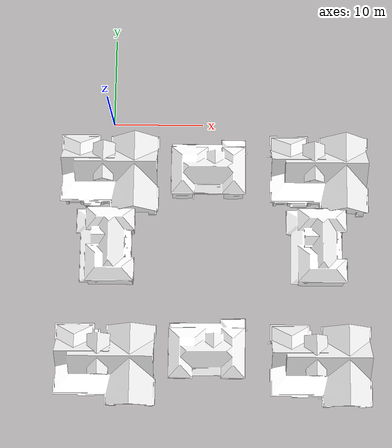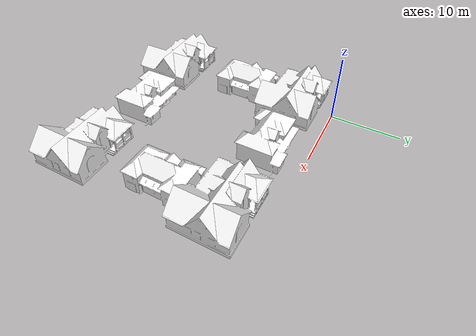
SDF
<sdf version='1.4'>
  <world name='default'>
    <plugin name="gazebo_octomap" filename="librotors_gazebo_octomap_plugin.so"/>
    <light name='sun' type='directional'>
      <cast_shadows>1</cast_shadows>
      <pose>0 0 10 0 0 0</pose>
      <diffuse>0.8 0.8 0.8 1</diffuse>
      <specular>0.2 0.2 0.2 1</specular>
      <attenuation>
        <range>1000</range>
        <constant>0.9</constant>
        <linear>0.01</linear>
        <quadratic>0.001</quadratic>
      </attenuation>
      <direction>-0.5 0.1 -0.9</direction>
    </light>
    <physics type='ode'>
      <ode>
        <solver>
          <type>quick</type>
          <iters>1000</iters>
          <sor>1.3</sor>
        </solver>
        <constraints>
          <cfm>0</cfm>
          <erp>0.2</erp>
          <contact_max_correcting_vel>100</contact_max_correcting_vel>
          <contact_surface_layer>0.001</contact_surface_layer>
        </constraints>
      </ode>
      <max_step_size>0.005</max_step_size>
      <real_time_factor>1</real_time_factor>
      <real_time_update_rate>200</real_time_update_rate>
      <gravity>0 0 -9.8</gravity>
    </physics>
    <scene>
      <ambient>0.4 0.4 0.4 1</ambient>
      <background>0.7 0.7 0.7 1</background>
      <shadows>1</shadows>
    </scene>
    <spherical_coordinates>
      <surface_model>EARTH_WGS84</surface_model>
      <latitude_deg>0</latitude_deg>
      <longitude_deg>0</longitude_deg>
      <elevation>0</elevation>
      <heading_deg>0</heading_deg>
    </spherical_coordinates>

    <model name='House 1'>
      <static>1</static>
      <link name='link'>
        <collision name='collision'>
          <geometry>
            <mesh>
              <uri>model://house_1/meshes/house_1.dae</uri>
            </mesh>
          </geometry>
          <max_contacts>10</max_contacts>
          <surface>
            <bounce/>
            <friction>
              <ode/>
            </friction>
            <contact>
              <ode/>
            </contact>
          </surface>
        </collision>
        <visual name='visual'>
          <geometry>
            <mesh>
              <uri>model://house_1/meshes/house_1.dae</uri>
            </mesh>
          </geometry>
          <material>
            <script>
              <uri>model://house_1/materials/scripts</uri>
              <uri>model://house_1/materials/textures</uri>
              <name>House_1/Diffuse</name>
            </script>
            <shader type='normal_map_object_space'>
              <normal_map>House_1_Normal.png</normal_map>
            </shader>
          </material>
        </visual>
        <velocity_decay>
          <linear>0</linear>
          <angular>0</angular>
        </velocity_decay>
        <self_collide>0</self_collide>
        <kinematic>0</kinematic>
        <gravity>1</gravity>
      </link>
      <pose>23 -6 0 0 0 0</pose>
    </model>

    <model name='House 2'>
      <static>1</static>
      <link name='link'>
        <collision name='collision'>
          <geometry>
            <mesh>
              <uri>model://house_2/meshes/house_2.dae</uri>
            </mesh>
          </geometry>
          <max_contacts>10</max_contacts>
          <surface>
            <bounce/>
            <friction>
              <ode/>
            </friction>
            <contact>
              <ode/>
            </contact>
          </surface>
        </collision>
        <visual name='visual'>
          <geometry>
            <mesh>
              <uri>model://house_2/meshes/house_2.dae</uri>
            </mesh>
          </geometry>
          <material>
            <script>
              <uri>model://house_2/materials/scripts</uri>
              <uri>model://house_2/materials/textures</uri>
              <uri>model://house_1/materials/textures</uri>
              <name>House_2/Diffuse</name>
            </script>
            <shader type='normal_map_object_space'>
              <normal_map>model://house_1/materials/textures/House_1_Normal.png</normal_map>
            </shader>
          </material>
        </visual>
        <velocity_decay>
          <linear>0</linear>
          <angular>0</angular>
        </velocity_decay>
        <self_collide>0</self_collide>
        <kinematic>0</kinematic>
        <gravity>1</gravity>
      </link>
      <pose>10 -6 0 0 0 0</pose>
    </model>

    <model name='House 1'>
      <static>1</static>
      <link name='link'>
        <collision name='collision'>
          <geometry>
            <mesh>
              <uri>model://house_1/meshes/house_1.dae</uri>
            </mesh>
          </geometry>
          <max_contacts>10</max_contacts>
          <surface>
            <bounce/>
            <friction>
              <ode/>
            </friction>
            <contact>
              <ode/>
            </contact>
          </surface>
        </collision>
        <visual name='visual'>
          <geometry>
            <mesh>
              <uri>model://house_1/meshes/house_1.dae</uri>
            </mesh>
          </geometry>
          <material>
            <script>
              <uri>model://house_1/materials/scripts</uri>
              <uri>model://house_1/materials/textures</uri>
              <name>House_1/Diffuse</name>
            </script>
            <shader type='normal_map_object_space'>
              <normal_map>House_1_Normal.png</normal_map>
            </shader>
          </material>
        </visual>
        <velocity_decay>
          <linear>0</linear>
          <angular>0</angular>
        </velocity_decay>
        <self_collide>0</self_collide>
        <kinematic>0</kinematic>
        <gravity>1</gravity>
      </link>
      <pose>0 -6 0 0 0 0</pose>
    </model>

    <model name='House 1'>
      <static>1</static>
      <link name='link'>
        <collision name='collision'>
          <geometry>
            <mesh>
              <uri>model://house_1/meshes/house_1.dae</uri>
            </mesh>
          </geometry>
          <max_contacts>10</max_contacts>
          <surface>
            <bounce/>
            <friction>
              <ode/>
            </friction>
            <contact>
              <ode/>
            </contact>
          </surface>
        </collision>
        <visual name='visual'>
          <geometry>
            <mesh>
              <uri>model://house_1/meshes/house_1.dae</uri>
            </mesh>
          </geometry>
          <material>
            <script>
              <uri>model://house_1/materials/scripts</uri>
              <uri>model://house_1/materials/textures</uri>
              <name>House_1/Diffuse</name>
            </script>
            <shader type='normal_map_object_space'>
              <normal_map>House_1_Normal.png</normal_map>
            </shader>
          </material>
        </visual>
        <velocity_decay>
          <linear>0</linear>
          <angular>0</angular>
        </velocity_decay>
        <self_collide>0</self_collide>
        <kinematic>0</kinematic>
        <gravity>1</gravity>
      </link>
      <pose>23 -27 0 0 0 0</pose>
    </model>

    <model name='House 2'>
      <static>1</static>
      <link name='link'>
        <collision name='collision'>
          <geometry>
            <mesh>
              <uri>model://house_2/meshes/house_2.dae</uri>
            </mesh>
          </geometry>
          <max_contacts>10</max_contacts>
          <surface>
            <bounce/>
            <friction>
              <ode/>
            </friction>
            <contact>
              <ode/>
            </contact>
          </surface>
        </collision>
        <visual name='visual'>
          <geometry>
            <mesh>
              <uri>model://house_2/meshes/house_2.dae</uri>
            </mesh>
          </geometry>
          <material>
            <script>
              <uri>model://house_2/materials/scripts</uri>
              <uri>model://house_2/materials/textures</uri>
              <uri>model://house_1/materials/textures</uri>
              <name>House_2/Diffuse</name>
            </script>
            <shader type='normal_map_object_space'>
              <normal_map>model://house_1/materials/textures/House_1_Normal.png</normal_map>
            </shader>
          </material>
        </visual>
        <velocity_decay>
          <linear>0</linear>
          <angular>0</angular>
        </velocity_decay>
        <self_collide>0</self_collide>
        <kinematic>0</kinematic>
        <gravity>1</gravity>
      </link>
      <pose>10 -26 0 0 0 0</pose>
    </model>

    <model name='House 1'>
      <static>1</static>
      <link name='link'>
        <collision name='collision'>
          <geometry>
            <mesh>
              <uri>model://house_1/meshes/house_1.dae</uri>
            </mesh>
          </geometry>
          <max_contacts>10</max_contacts>
          <surface>
            <bounce/>
            <friction>
              <ode/>
            </friction>
            <contact>
              <ode/>
            </contact>
          </surface>
        </collision>
        <visual name='visual'>
          <geometry>
            <mesh>
              <uri>model://house_1/meshes/house_1.dae</uri>
            </mesh>
          </geometry>
          <material>
            <script>
              <uri>model://house_1/materials/scripts</uri>
              <uri>model://house_1/materials/textures</uri>
              <name>House_1/Diffuse</name>
            </script>
            <shader type='normal_map_object_space'>
              <normal_map>House_1_Normal.png</normal_map>
            </shader>
          </material>
        </visual>
        <velocity_decay>
          <linear>0</linear>
          <angular>0</angular>
        </velocity_decay>
        <self_collide>0</self_collide>
        <kinematic>0</kinematic>
        <gravity>1</gravity>
      </link>
      <pose>0 -27 0 0 0 0</pose>
    </model>

    <model name='House 2'>
      <static>1</static>
      <link name='link'>
        <collision name='collision'>
          <geometry>
            <mesh>
              <uri>model://house_2/meshes/house_2.dae</uri>
            </mesh>
          </geometry>
          <max_contacts>10</max_contacts>
          <surface>
            <bounce/>
            <friction>
              <ode/>
            </friction>
            <contact>
              <ode/>
            </contact>
          </surface>
        </collision>
        <visual name='visual'>
          <geometry>
            <mesh>
              <uri>model://house_2/meshes/house_2.dae</uri>
            </mesh>
          </geometry>
          <material>
            <script>
              <uri>model://house_2/materials/scripts</uri>
              <uri>model://house_2/materials/textures</uri>
              <uri>model://house_1/materials/textures</uri>
              <name>House_2/Diffuse</name>
            </script>
            <shader type='normal_map_object_space'>
              <normal_map>model://house_1/materials/textures/House_1_Normal.png</normal_map>
            </shader>
          </material>
        </visual>
        <velocity_decay>
          <linear>0</linear>
          <angular>0</angular>
        </velocity_decay>
        <self_collide>0</self_collide>
        <kinematic>0</kinematic>
        <gravity>1</gravity>
      </link>
      <pose>23 -15 0 0 0 1.57079632679</pose>
    </model>

    <model name='House 2'>
      <static>1</static>
      <link name='link'>
        <collision name='collision'>
          <geometry>
            <mesh>
              <uri>model://house_2/meshes/house_2.dae</uri>
            </mesh>
          </geometry>
          <max_contacts>10</max_contacts>
          <surface>
            <bounce/>
            <friction>
              <ode/>
            </friction>
            <contact>
              <ode/>
            </contact>
          </surface>
        </collision>
        <visual name='visual'>
          <geometry>
            <mesh>
              <uri>model://house_2/meshes/house_2.dae</uri>
            </mesh>
          </geometry>
          <material>
            <script>
              <uri>model://house_2/materials/scripts</uri>
              <uri>model://house_2/materials/textures</uri>
              <uri>model://house_1/materials/textures</uri>
              <name>House_2/Diffuse</name>
            </script>
            <shader type='normal_map_object_space'>
              <normal_map>model://house_1/materials/textures/House_1_Normal.png</normal_map>
            </shader>
          </material>
        </visual>
        <velocity_decay>
          <linear>0</linear>
          <angular>0</angular>
        </velocity_decay>
        <self_collide>0</self_collide>
        <kinematic>0</kinematic>
        <gravity>1</gravity>
      </link>
      <pose>0 -15 0 0 0 1.57079632679</pose>
    </model>

      </world>
</sdf>
